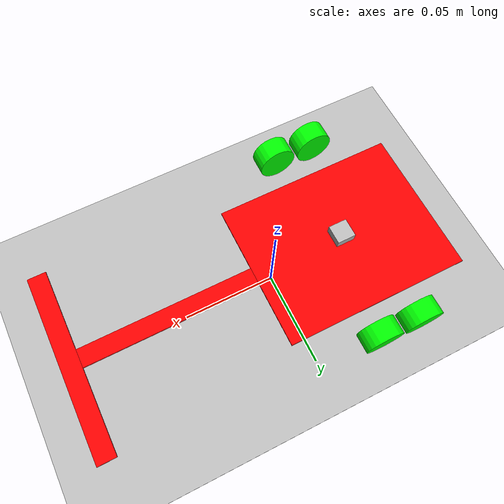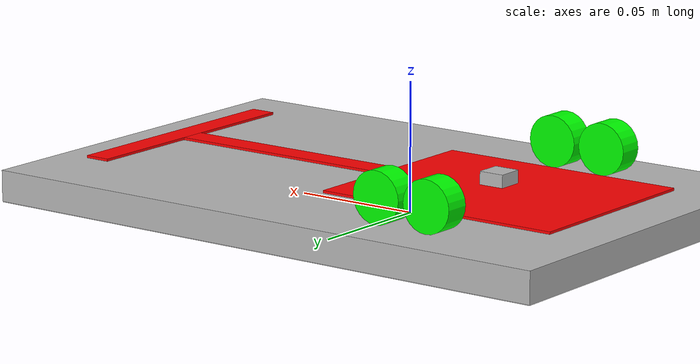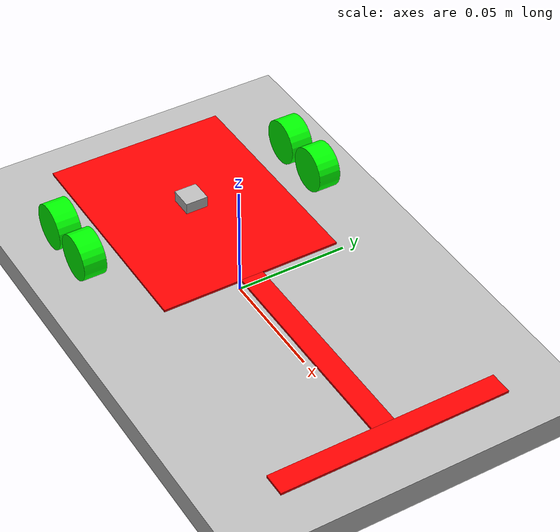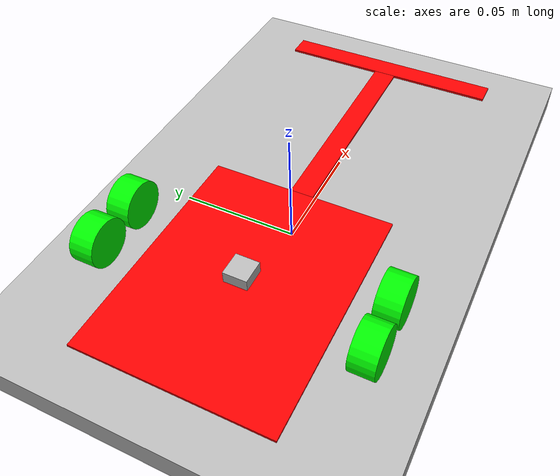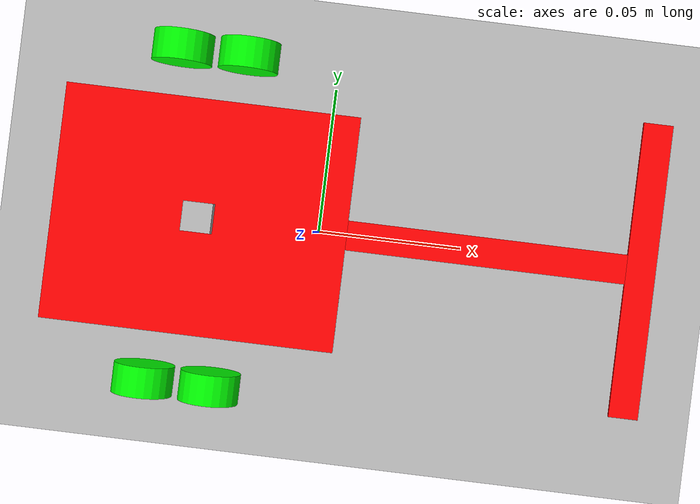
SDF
<?xml version="1.0" ?>
<sdf version="1.5">
	<world name="default">
		<include>
			<uri>model://sun</uri>
		</include>
		<include>
			<uri>model://ground_plane</uri>
		</include>

		<include>
			<name>course</name>
			<uri>model://robotracer_sdf/course_small</uri>
			<static>true</static>
			<pose>-0.4319 -0.855960 0 0 0 -1.5708</pose>
		</include>

		<include>
			<name>robotracer</name>
			<uri>model://robotracer_sdf/robotracer</uri>
			<pose>-0.04 0 0.013 0 0 0</pose>
		</include>

		<plugin name='GazeboPlugin' filename='/home/user/src/GazeboPlugin/export/lib/libGazeboCoSimPlugin.so'>
			<portNumber>14581</portNumber>
		</plugin>
	</world>
</sdf>

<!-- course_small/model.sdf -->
<!--
	 SPDX-License-Identifier: GPL-3.0-only

	 Copyright (C) 2021  Haruki Shimotori. All right reserved.
-->

<sdf version="1.5">
	<model name="course_small">
		<static>true</static>
		<link name="course_small">
			<pose>0 0 0.006 0 0 0</pose>

			<collision name="collisio">
				<geometry>
					<box>
						<size>3.6 2.7202 0.012</size>
					</box>
				</geometry>
			</collision>
			<visual name="visual">
				<geometry>
					<box>
						<size>3.6 2.7202 0.012</size>
					</box>
				</geometry>
				<material>
					<script>
						<uri>model://robotracer_sdf/course_small/materials/course.material</uri>
						<name>course_texture</name>
					</script>
				</material>
			</visual>
		</link>
  </model>
</sdf>

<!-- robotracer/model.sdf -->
<!--
	 SPDX-License-Identifier: GPL-3.0-only

	 Copyright (C) 2021  Haruki Shimotori. All right reserved.
-->

<sdf version="1.5">
	<model name="robotracer">
		<static>false</static>

<!-- ****************** Link ****************** -->
		<link name="chassis">
			<pose>0 0 0.0015 0 0 0</pose>
			<inertial>
				<mass>0.08</mass>
				<inertia>
					<ixx>0.00003</ixx>
					<ixy>0.0</ixy>
					<ixz>0.0</ixz>
					<iyy>0.00003</iyy>
					<iyz>0.0</iyz>
					<izz>0.00005</izz>
				</inertia>
			</inertial>

			<collision name="collision_base">
				<geometry>
					<box>
						<size>0.1 0.08 0.001</size>
					</box>
				</geometry>
			</collision>
			<visual name="visual_base">
				<geometry>
					<box>
						<size>0.1 0.08 0.001</size>
					</box>
				</geometry>
				<material>
					<ambient>1 0 0 1</ambient>
					<diffuse>1 0 0 1</diffuse>
					<specular>0.1 0.1 0.1 1</specular>
					<emissive>0 0 0 0</emissive>
				</material>
			</visual>

			<collision name="collision_sensor_bar">
				<pose>0.0975 0 0.0 0 0 0</pose>
				<geometry>
					<box>
						<size>0.095 0.01 0.001</size>
					</box>
				</geometry>
			</collision>
			<visual name="visual_sensor_bar">
				<pose>0.0975 0 0.0 0 0 0</pose>
				<geometry>
					<box>
						<size>0.095 0.01 0.001</size>
					</box>
				</geometry>
				<material>
					<ambient>1 0 0 1</ambient>
					<diffuse>1 0 0 1</diffuse>
					<specular>0.1 0.1 0.1 1</specular>
					<emissive>0 0 0 0</emissive>
				</material>
			</visual>

			<collision name="collision_sensor">
				<pose>0.150 0.0 0.0 0 0 0</pose>
				<geometry>
					<box>
						<size>0.010 0.100 0.001</size>
					</box>
				</geometry>
			</collision>
			<visual name="visual_sensor">
				<pose>0.150 0.0 0.0 0 0 0</pose>
				<geometry>
					<box>
						<size>0.010 0.100 0.001</size>
					</box>
				</geometry>
				<material>
					<ambient>1 0 0 1</ambient>
					<diffuse>1 0 0 1</diffuse>
					<specular>0.1 0.1 0.1 1</specular>
					<emissive>0 0 0 0</emissive>
				</material>
			</visual>

			<collision name="collision_support_left">
				<pose>0.154 0.045 -0.001 0 0 0</pose>
				<geometry>
					<sphere>
						<radius>0.0005</radius>
					</sphere>
				</geometry>
				<surface>
					<friction>
						<ode>
							<mu>0</mu>
							<mu2>0</mu2>
							<slip1>1.0</slip1>
							<slip2>1.0</slip2>
						</ode>
					</friction>
				</surface>
			</collision>
			<visual name="visual_support_left">
				<pose>0.154 0.045 -0.001 0 0 0</pose>
				<geometry>
					<sphere>
						<radius>0.0005</radius>
					</sphere>
				</geometry>
			</visual>
			<collision name="collision_support_right">
				<pose>0.154 -0.045 -0.001 0 0 0</pose>
				<geometry>
					<sphere>
						<radius>0.0005</radius>
					</sphere>
				</geometry>
				<surface>
					<friction>
						<ode>
							<mu>0</mu>
							<mu2>0</mu2>
							<slip1>1.0</slip1>
							<slip2>1.0</slip2>
						</ode>
					</friction>
				</surface>
			</collision>
			<visual name="visual_support_right">
				<pose>0.154 -0.045 -0.001 0 0 0</pose>
				<geometry>
					<sphere>
						<radius>0.0005</radius>
					</sphere>
				</geometry>
			</visual>
			<visual name="visual_imu">
				<pose>0 0 0.005 0 0 0</pose>
				<geometry>
					<box>
						<size>0.010 0.010 0.005</size>
					</box>
				</geometry>
			</visual>
			<sensor name="imu" type="imu">
				<pose>0 0 0.0025 0 0 0</pose>
				<imu>
					<angular_velocity>
						<z>
							<noise type="gaussian">
								<mean>0.0</mean>
								<stddev>2e-4</stddev>
								<bias_mean>0.0000075</bias_mean>
								<bias_stddev>0.0000008</bias_stddev>
							</noise>
						</z>
					</angular_velocity>
				</imu>
				<always_on>1</always_on>
				<update_rate>1000</update_rate>
			</sensor>
		</link>
		<link name="right_front_wheel">
			<pose>0.011 -0.055 0.009 1.5707 0 0</pose>

			<inertial>
				<mass>0.005</mass>
				<inertia>
					<ixx>0.0000003</ixx>
					<iyy>0.0000003</iyy>
					<izz>0.0000003</izz>
					<ixy>0</ixy>
					<ixz>0</ixz>
					<iyz>0</iyz>
				</inertia>
			</inertial>

			<collision name="collision">
				<geometry>
					<cylinder>
						<radius>0.01</radius>
						<length>0.01</length>
					</cylinder>
				</geometry>
				<surface>
					<friction>
						<ode>
							<mu>0.8</mu>
							<mu2>0.8</mu2>
							<slip1>0.5</slip1>
							<slip2>0.5</slip2>
						</ode>
					</friction>
				</surface>
			</collision>
			<visual name="visual">
				<geometry>
					<cylinder>
						<radius>0.01</radius>
						<length>0.01</length>
					</cylinder>
				</geometry>
				<material>
					<ambient>0 1 0 1</ambient>
					<diffuse>0 1 0 1</diffuse>
					<specular>0.1 0.1 0.1 1</specular>
					<emissive>0 0 0 0</emissive>
				</material>
			</visual>
		</link>
		<link name="left_front_wheel">
			<pose>0.011 0.055 0.009 1.5707 0 0</pose>

			<inertial>
				<mass>0.005</mass>
				<inertia>
					<ixx>0.0000003</ixx>
					<iyy>0.0000003</iyy>
					<izz>0.0000003</izz>
					<ixy>0</ixy>
					<ixz>0</ixz>
					<iyz>0</iyz>
				</inertia>
			</inertial>

			<collision name="collision">
				<geometry>
					<cylinder>
						<radius>0.01</radius>
						<length>0.01</length>
					</cylinder>
				</geometry>
				<surface>
					<friction>
						<ode>
							<mu>0.8</mu>
							<mu2>0.8</mu2>
							<slip1>0.5</slip1>
							<slip2>0.5</slip2>
						</ode>
					</friction>
				</surface>
			</collision>
			<visual name="visual">
				<geometry>
					<cylinder>
						<radius>0.01</radius>
						<length>0.01</length>
					</cylinder>
				</geometry>
				<material>
					<ambient>0 1 0 1</ambient>
					<diffuse>0 1 0 1</diffuse>
					<specular>0.1 0.1 0.1 1</specular>
					<emissive>0 0 0 0</emissive>
				</material>
			</visual>
		</link>

		<link name="right_rear_wheel">
			<pose>-0.011 -0.055 0.009 1.5707 0 0</pose>

			<inertial>
				<mass>0.005</mass>
				<inertia>
					<ixx>0.0000003</ixx>
					<iyy>0.0000003</iyy>
					<izz>0.0000003</izz>
					<ixy>0</ixy>
					<ixz>0</ixz>
					<iyz>0</iyz>
				</inertia>
			</inertial>

			<collision name="collision">
				<geometry>
					<cylinder>
						<radius>0.01</radius>
						<length>0.01</length>
					</cylinder>
				</geometry>
				<surface>
					<friction>
						<ode>
							<mu>0.8</mu>
							<mu2>0.8</mu2>
							<slip1>0.5</slip1>
							<slip2>0.5</slip2>
						</ode>
					</friction>
				</surface>
			</collision>
			<visual name="visual">
				<geometry>
					<cylinder>
						<radius>0.01</radius>
						<length>0.01</length>
					</cylinder>
				</geometry>
				<material>
					<ambient>0 1 0 1</ambient>
					<diffuse>0 1 0 1</diffuse>
					<specular>0.1 0.1 0.1 1</specular>
					<emissive>0 0 0 0</emissive>
				</material>
			</visual>
		</link>
		<link name="left_rear_wheel">
			<pose>-0.011 0.055 0.009 1.5707 0 0</pose>

			<inertial>
				<mass>0.005</mass>
				<inertia>
					<ixx>0.0000003</ixx>
					<iyy>0.0000003</iyy>
					<izz>0.0000003</izz>
					<ixy>0</ixy>
					<ixz>0</ixz>
					<iyz>0</iyz>
				</inertia>
			</inertial>

			<collision name="collision">
				<geometry>
					<cylinder>
						<radius>0.01</radius>
						<length>0.01</length>
					</cylinder>
				</geometry>
				<surface>
					<friction>
						<ode>
							<mu>0.8</mu>
							<mu2>0.8</mu2>
							<slip1>0.5</slip1>
							<slip2>0.5</slip2>
						</ode>
					</friction>
				</surface>
			</collision>
			<visual name="visual">
				<geometry>
					<cylinder>
						<radius>0.01</radius>
						<length>0.01</length>
					</cylinder>
				</geometry>
				<material>
					<ambient>0 1 0 1</ambient>
					<diffuse>0 1 0 1</diffuse>
					<specular>0.1 0.1 0.1 1</specular>
					<emissive>0 0 0 0</emissive>
				</material>
			</visual>
		</link>

		<link name="camera_link">
			<pose>0.0 0.0 0.0 0 0 0</pose>

			<inertial>
				<mass>0.00005</mass>
				<inertia>
					<ixx>0.00000001</ixx>
					<iyy>0.00000001</iyy>
					<izz>0.00000001</izz>
					<ixy>0</ixy>
					<ixz>0</ixz>
					<iyz>0</iyz>
				</inertia>
			</inertial>
			<sensor name="camera_large" type="camera">
				<pose>0.15 0.0 0.001 0 1.571 0</pose>
				<camera>
					<horizontal_fov>3</horizontal_fov>
					<image>
						<width>101</width>
						<height>1</height>
					</image>
					<clip>
						<near>0.0001</near>
						<far>1</far>
					</clip>
				</camera>
				<always_on>1</always_on>
				<update_rate>1000</update_rate>
				<visualize>false</visualize>
			</sensor>
		</link>
<!-- ****************** Joint ****************** -->
		<joint type="revolute" name="right_front">
			<pose>0 0 0 0 0 0</pose>
			<child>right_front_wheel</child>
			<parent>chassis</parent>
			<axis>
				<xyz>0 1 0</xyz>
				<use_parent_model_frame>true</use_parent_model_frame>
				<limit>
					<velocity> 1000 </velocity>
					<effort> 0.05 </effort>
				</limit>

				<dynamics>
					<damping> 0.00001 </damping>
				</dynamics>
			</axis>
		</joint>
		<joint type="revolute" name="right_rear">
			<pose>0 0 0 0 0 0</pose>
			<child>right_rear_wheel</child>
			<parent>chassis</parent>
			<axis>
				<xyz>0 1 0</xyz>
				<use_parent_model_frame>true</use_parent_model_frame>
				<limit>
					<velocity> 1000 </velocity>
					<effort> 0.05 </effort>
				</limit>
				<dynamics>
					<damping> 0.00001 </damping>
				</dynamics>
			</axis>
		</joint>
		<joint type="revolute" name="left_front">
			<pose>0 0 0 0 0 0</pose>
			<child>left_front_wheel</child>
			<parent>chassis</parent>
			<axis>
				<xyz>0 1 0</xyz>
				<use_parent_model_frame>true</use_parent_model_frame>
				<limit>
					<velocity> 1000 </velocity>
					<effort> 0.05 </effort>
				</limit>
				<dynamics>
					<damping> 0.00001 </damping>
				</dynamics>
			</axis>
		</joint>
		<joint type="revolute" name="left_rear">
			<pose>0 0 0 0 0 0</pose>
			<child>left_rear_wheel</child>
			<parent>chassis</parent>
			<axis>
				<xyz>0 1 0</xyz>
				<use_parent_model_frame>true</use_parent_model_frame>
				<limit>
					<velocity> 1000 </velocity>
					<effort> 0.05 </effort>
				</limit>
				<dynamics>
					<damping> 0.00001 </damping>
				</dynamics>
			</axis>
		</joint>

		<joint type="fixed" name="camera_joint">
			<pose>0.0 0.0 0.0 0 0 0</pose>
			<child>camera_link</child>
			<parent>chassis</parent>
		</joint>
<!-- ****************** plugin****************** -->
  </model>
</sdf>
